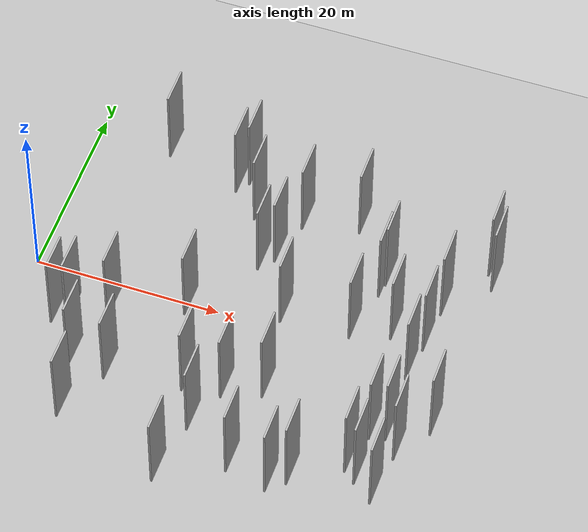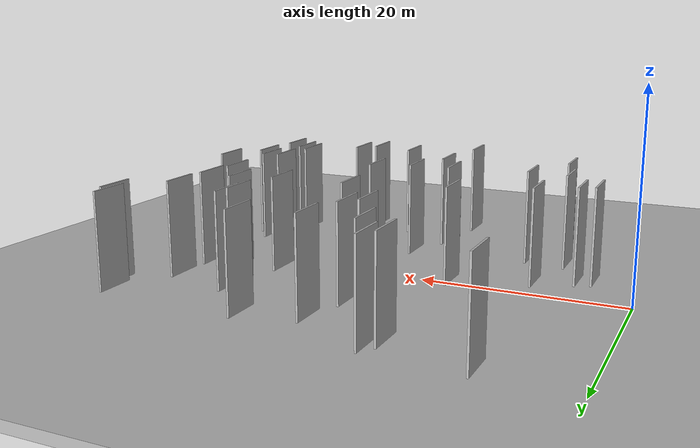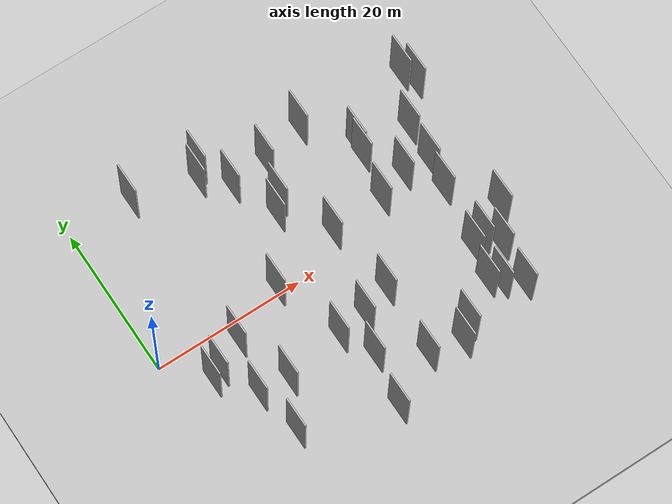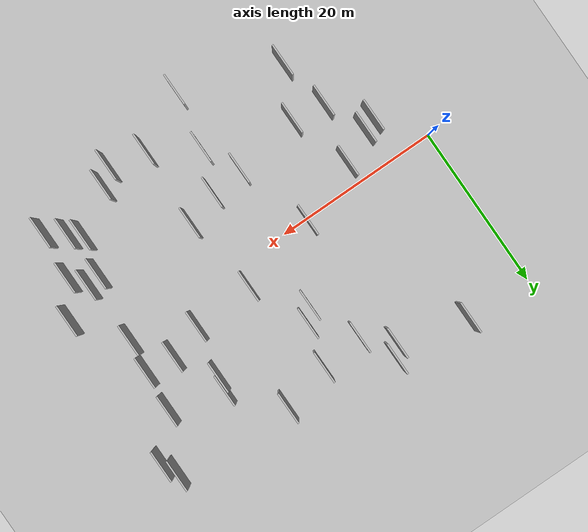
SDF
<?xml version="1.0" encoding="utf-8"?>

<sdf version="1.6">

   <world name="default">

      <gui fullscreen="0">

         <camera name="user_camera">

            <pose>-15 0 4.57585 0 0 0</pose>

            <view_controller>orbit</view_controller>

         </camera>

      </gui>

      <scene>

         <sky>

           <clouds>

             <speed>12</speed>

           </clouds>

         </sky>

         <ambient>0.4 0.4 0.4 1</ambient>

         <background>0.7 0.7 0.7 1</background>

         <shadows>1</shadows>

      </scene>

      <gravity>0 0 -9.8066</gravity>

      <magnetic_field>6e-06 2.3e-05 -4.2e-05</magnetic_field>

      <physics default="0" name="default_physics" type="ode">

         <ode>

            <solver>

               <type>quick</type>

               <iters>10</iters>

               <sor>1.0</sor>

               <use_dynamic_moi_rescaling>0</use_dynamic_moi_rescaling>

            </solver>

            <constraints>

               <cfm>0</cfm>

               <erp>0.2</erp>

               <contact_max_correcting_vel>100</contact_max_correcting_vel>

               <contact_surface_layer>0.001</contact_surface_layer>

            </constraints>

         </ode>

         <max_step_size>0.004</max_step_size>

         <real_time_factor>1</real_time_factor>

         <real_time_update_rate>250</real_time_update_rate>

      </physics>

      <light name="sun" type="directional">

         <cast_shadows>1</cast_shadows>

         <pose>0 0 10 0 0 0</pose>

         <diffuse>0.8 0.8 0.8 1</diffuse>

         <specular>0.2 0.2 0.2 1</specular>

         <attenuation>

            <range>1000</range>

            <constant>0.9</constant>

            <linear>0.01</linear>

            <quadratic>0.001</quadratic>

         </attenuation>

         <direction>-0.5 0.1 -0.9</direction>

      </light>

      <include>

         <name>ground_plane_1</name>

         <uri>model://HANNAS_ground_plane</uri>

         <pose>0 0 0  0 0 0</pose>

      </include>

      <include>

         <name>ground_plane_2</name>

         <uri>model://HANNAS_ground_plane</uri>

         <pose>100 0 0  0 0 0</pose>

      </include>

      <model name="HANNAS_wall_1">

         <static>1</static>

         <pose frame="">9.5221 -2.6151 0.0 0.000000 0.000000 1.570796</pose>

         <link name="link">

            <pose frame="">0 0 5.00 0 0 0</pose>

            <collision name="collision">

               <geometry>

                  <box>

                     <size>4.00 0.2 10.00</size>

                  </box>

               </geometry>

               <max_contacts>10</max_contacts>

               <surface>

                  <contact>

                     <ode/>

                  </contact>

                  <bounce/>

                  <friction>

                     <torsional>

                        <ode/>

                     </torsional>

                     <ode/>

                  </friction>

               </surface>

            </collision>

            <visual name="visual">

               <cast_shadows>0</cast_shadows>

               <geometry>

                  <box>

                     <size>4.00 0.2 10.00</size>

                  </box>

               </geometry>

               <material>

                  <script>

                     <uri>model://HANNAS_wall/materials/scripts</uri>

                     <uri>model://HANNAS_wall/materials/textures</uri>

                     <name>vrc/HANNAS_wall</name>

                  </script>

               </material>

            </visual>

            <self_collide>0</self_collide>

            <enable_wind>0</enable_wind>

            <kinematic>0</kinematic>

         </link>

      </model>

      <model name="HANNAS_wall_2">

         <static>1</static>

         <pose frame="">40.8400 -0.0192 0.0 0.000000 0.000000 1.570796</pose>

         <link name="link">

            <pose frame="">0 0 5.00 0 0 0</pose>

            <collision name="collision">

               <geometry>

                  <box>

                     <size>4.00 0.2 10.00</size>

                  </box>

               </geometry>

               <max_contacts>10</max_contacts>

               <surface>

                  <contact>

                     <ode/>

                  </contact>

                  <bounce/>

                  <friction>

                     <torsional>

                        <ode/>

                     </torsional>

                     <ode/>

                  </friction>

               </surface>

            </collision>

            <visual name="visual">

               <cast_shadows>0</cast_shadows>

               <geometry>

                  <box>

                     <size>4.00 0.2 10.00</size>

                  </box>

               </geometry>

               <material>

                  <script>

                     <uri>model://HANNAS_wall/materials/scripts</uri>

                     <uri>model://HANNAS_wall/materials/textures</uri>

                     <name>vrc/HANNAS_wall</name>

                  </script>

               </material>

            </visual>

            <self_collide>0</self_collide>

            <enable_wind>0</enable_wind>

            <kinematic>0</kinematic>

         </link>

      </model>

      <model name="HANNAS_wall_3">

         <static>1</static>

         <pose frame="">27.4246 -16.4977 0.0 0.000000 0.000000 1.570796</pose>

         <link name="link">

            <pose frame="">0 0 5.00 0 0 0</pose>

            <collision name="collision">

               <geometry>

                  <box>

                     <size>4.00 0.2 10.00</size>

                  </box>

               </geometry>

               <max_contacts>10</max_contacts>

               <surface>

                  <contact>

                     <ode/>

                  </contact>

                  <bounce/>

                  <friction>

                     <torsional>

                        <ode/>

                     </torsional>

                     <ode/>

                  </friction>

               </surface>

            </collision>

            <visual name="visual">

               <cast_shadows>0</cast_shadows>

               <geometry>

                  <box>

                     <size>4.00 0.2 10.00</size>

                  </box>

               </geometry>

               <material>

                  <script>

                     <uri>model://HANNAS_wall/materials/scripts</uri>

                     <uri>model://HANNAS_wall/materials/textures</uri>

                     <name>vrc/HANNAS_wall</name>

                  </script>

               </material>

            </visual>

            <self_collide>0</self_collide>

            <enable_wind>0</enable_wind>

            <kinematic>0</kinematic>

         </link>

      </model>

      <model name="HANNAS_wall_4">

         <static>1</static>

         <pose frame="">22.0901 8.1828 0.0 0.000000 0.000000 1.570796</pose>

         <link name="link">

            <pose frame="">0 0 5.00 0 0 0</pose>

            <collision name="collision">

               <geometry>

                  <box>

                     <size>4.00 0.2 10.00</size>

                  </box>

               </geometry>

               <max_contacts>10</max_contacts>

               <surface>

                  <contact>

                     <ode/>

                  </contact>

                  <bounce/>

                  <friction>

                     <torsional>

                        <ode/>

                     </torsional>

                     <ode/>

                  </friction>

               </surface>

            </collision>

            <visual name="visual">

               <cast_shadows>0</cast_shadows>

               <geometry>

                  <box>

                     <size>4.00 0.2 10.00</size>

                  </box>

               </geometry>

               <material>

                  <script>

                     <uri>model://HANNAS_wall/materials/scripts</uri>

                     <uri>model://HANNAS_wall/materials/textures</uri>

                     <name>vrc/HANNAS_wall</name>

                  </script>

               </material>

            </visual>

            <self_collide>0</self_collide>

            <enable_wind>0</enable_wind>

            <kinematic>0</kinematic>

         </link>

      </model>

      <model name="HANNAS_wall_5">

         <static>1</static>

         <pose frame="">45.2176 -5.6757 0.0 0.000000 0.000000 1.570796</pose>

         <link name="link">

            <pose frame="">0 0 5.00 0 0 0</pose>

            <collision name="collision">

               <geometry>

                  <box>

                     <size>4.00 0.2 10.00</size>

                  </box>

               </geometry>

               <max_contacts>10</max_contacts>

               <surface>

                  <contact>

                     <ode/>

                  </contact>

                  <bounce/>

                  <friction>

                     <torsional>

                        <ode/>

                     </torsional>

                     <ode/>

                  </friction>

               </surface>

            </collision>

            <visual name="visual">

               <cast_shadows>0</cast_shadows>

               <geometry>

                  <box>

                     <size>4.00 0.2 10.00</size>

                  </box>

               </geometry>

               <material>

                  <script>

                     <uri>model://HANNAS_wall/materials/scripts</uri>

                     <uri>model://HANNAS_wall/materials/textures</uri>

                     <name>vrc/HANNAS_wall</name>

                  </script>

               </material>

            </visual>

            <self_collide>0</self_collide>

            <enable_wind>0</enable_wind>

            <kinematic>0</kinematic>

         </link>

      </model>

      <model name="HANNAS_wall_6">

         <static>1</static>

         <pose frame="">7.9587 -9.5950 0.0 0.000000 0.000000 1.570796</pose>

         <link name="link">

            <pose frame="">0 0 5.00 0 0 0</pose>

            <collision name="collision">

               <geometry>

                  <box>

                     <size>4.00 0.2 10.00</size>

                  </box>

               </geometry>

               <max_contacts>10</max_contacts>

               <surface>

                  <contact>

                     <ode/>

                  </contact>

                  <bounce/>

                  <friction>

                     <torsional>

                        <ode/>

                     </torsional>

                     <ode/>

                  </friction>

               </surface>

            </collision>

            <visual name="visual">

               <cast_shadows>0</cast_shadows>

               <geometry>

                  <box>

                     <size>4.00 0.2 10.00</size>

                  </box>

               </geometry>

               <material>

                  <script>

                     <uri>model://HANNAS_wall/materials/scripts</uri>

                     <uri>model://HANNAS_wall/materials/textures</uri>

                     <name>vrc/HANNAS_wall</name>

                  </script>

               </material>

            </visual>

            <self_collide>0</self_collide>

            <enable_wind>0</enable_wind>

            <kinematic>0</kinematic>

         </link>

      </model>

      <model name="HANNAS_wall_7">

         <static>1</static>

         <pose frame="">45.7970 13.5000 0.0 0.000000 0.000000 1.570796</pose>

         <link name="link">

            <pose frame="">0 0 5.00 0 0 0</pose>

            <collision name="collision">

               <geometry>

                  <box>

                     <size>4.00 0.2 10.00</size>

                  </box>

               </geometry>

               <max_contacts>10</max_contacts>

               <surface>

                  <contact>

                     <ode/>

                  </contact>

                  <bounce/>

                  <friction>

                     <torsional>

                        <ode/>

                     </torsional>

                     <ode/>

                  </friction>

               </surface>

            </collision>

            <visual name="visual">

               <cast_shadows>0</cast_shadows>

               <geometry>

                  <box>

                     <size>4.00 0.2 10.00</size>

                  </box>

               </geometry>

               <material>

                  <script>

                     <uri>model://HANNAS_wall/materials/scripts</uri>

                     <uri>model://HANNAS_wall/materials/textures</uri>

                     <name>vrc/HANNAS_wall</name>

                  </script>

               </material>

            </visual>

            <self_collide>0</self_collide>

            <enable_wind>0</enable_wind>

            <kinematic>0</kinematic>

         </link>

      </model>

      <model name="HANNAS_wall_8">

         <static>1</static>

         <pose frame="">35.2529 10.5820 0.0 0.000000 0.000000 1.570796</pose>

         <link name="link">

            <pose frame="">0 0 5.00 0 0 0</pose>

            <collision name="collision">

               <geometry>

                  <box>

                     <size>4.00 0.2 10.00</size>

                  </box>

               </geometry>

               <max_contacts>10</max_contacts>

               <surface>

                  <contact>

                     <ode/>

                  </contact>

                  <bounce/>

                  <friction>

                     <torsional>

                        <ode/>

                     </torsional>

                     <ode/>

                  </friction>

               </surface>

            </collision>

            <visual name="visual">

               <cast_shadows>0</cast_shadows>

               <geometry>

                  <box>

                     <size>4.00 0.2 10.00</size>

                  </box>

               </geometry>

               <material>

                  <script>

                     <uri>model://HANNAS_wall/materials/scripts</uri>

                     <uri>model://HANNAS_wall/materials/textures</uri>

                     <name>vrc/HANNAS_wall</name>

                  </script>

               </material>

            </visual>

            <self_collide>0</self_collide>

            <enable_wind>0</enable_wind>

            <kinematic>0</kinematic>

         </link>

      </model>

      <model name="HANNAS_wall_9">

         <static>1</static>

         <pose frame="">44.9552 15.3432 0.0 0.000000 0.000000 1.570796</pose>

         <link name="link">

            <pose frame="">0 0 5.00 0 0 0</pose>

            <collision name="collision">

               <geometry>

                  <box>

                     <size>4.00 0.2 10.00</size>

                  </box>

               </geometry>

               <max_contacts>10</max_contacts>

               <surface>

                  <contact>

                     <ode/>

                  </contact>

                  <bounce/>

                  <friction>

                     <torsional>

                        <ode/>

                     </torsional>

                     <ode/>

                  </friction>

               </surface>

            </collision>

            <visual name="visual">

               <cast_shadows>0</cast_shadows>

               <geometry>

                  <box>

                     <size>4.00 0.2 10.00</size>

                  </box>

               </geometry>

               <material>

                  <script>

                     <uri>model://HANNAS_wall/materials/scripts</uri>

                     <uri>model://HANNAS_wall/materials/textures</uri>

                     <name>vrc/HANNAS_wall</name>

                  </script>

               </material>

            </visual>

            <self_collide>0</self_collide>

            <enable_wind>0</enable_wind>

            <kinematic>0</kinematic>

         </link>

      </model>

      <model name="HANNAS_wall_10">

         <static>1</static>

         <pose frame="">30.5593 16.1835 0.0 0.000000 0.000000 1.570796</pose>

         <link name="link">

            <pose frame="">0 0 5.00 0 0 0</pose>

            <collision name="collision">

               <geometry>

                  <box>

                     <size>4.00 0.2 10.00</size>

                  </box>

               </geometry>

               <max_contacts>10</max_contacts>

               <surface>

                  <contact>

                     <ode/>

                  </contact>

                  <bounce/>

                  <friction>

                     <torsional>

                        <ode/>

                     </torsional>

                     <ode/>

                  </friction>

               </surface>

            </collision>

            <visual name="visual">

               <cast_shadows>0</cast_shadows>

               <geometry>

                  <box>

                     <size>4.00 0.2 10.00</size>

                  </box>

               </geometry>

               <material>

                  <script>

                     <uri>model://HANNAS_wall/materials/scripts</uri>

                     <uri>model://HANNAS_wall/materials/textures</uri>

                     <name>vrc/HANNAS_wall</name>

                  </script>

               </material>

            </visual>

            <self_collide>0</self_collide>

            <enable_wind>0</enable_wind>

            <kinematic>0</kinematic>

         </link>

      </model>

      <model name="HANNAS_wall_11">

         <static>1</static>

         <pose frame="">37.8610 4.2416 0.0 0.000000 0.000000 1.570796</pose>

         <link name="link">

            <pose frame="">0 0 5.00 0 0 0</pose>

            <collision name="collision">

               <geometry>

                  <box>

                     <size>4.00 0.2 10.00</size>

                  </box>

               </geometry>

               <max_contacts>10</max_contacts>

               <surface>

                  <contact>

                     <ode/>

                  </contact>

                  <bounce/>

                  <friction>

                     <torsional>

                        <ode/>

                     </torsional>

                     <ode/>

                  </friction>

               </surface>

            </collision>

            <visual name="visual">

               <cast_shadows>0</cast_shadows>

               <geometry>

                  <box>

                     <size>4.00 0.2 10.00</size>

                  </box>

               </geometry>

               <material>

                  <script>

                     <uri>model://HANNAS_wall/materials/scripts</uri>

                     <uri>model://HANNAS_wall/materials/textures</uri>

                     <name>vrc/HANNAS_wall</name>

                  </script>

               </material>

            </visual>

            <self_collide>0</self_collide>

            <enable_wind>0</enable_wind>

            <kinematic>0</kinematic>

         </link>

      </model>

      <model name="HANNAS_wall_12">

         <static>1</static>

         <pose frame="">39.8661 -13.7240 0.0 0.000000 0.000000 1.570796</pose>

         <link name="link">

            <pose frame="">0 0 5.00 0 0 0</pose>

            <collision name="collision">

               <geometry>

                  <box>

                     <size>4.00 0.2 10.00</size>

                  </box>

               </geometry>

               <max_contacts>10</max_contacts>

               <surface>

                  <contact>

                     <ode/>

                  </contact>

                  <bounce/>

                  <friction>

                     <torsional>

                        <ode/>

                     </torsional>

                     <ode/>

                  </friction>

               </surface>

            </collision>

            <visual name="visual">

               <cast_shadows>0</cast_shadows>

               <geometry>

                  <box>

                     <size>4.00 0.2 10.00</size>

                  </box>

               </geometry>

               <material>

                  <script>

                     <uri>model://HANNAS_wall/materials/scripts</uri>

                     <uri>model://HANNAS_wall/materials/textures</uri>

                     <name>vrc/HANNAS_wall</name>

                  </script>

               </material>

            </visual>

            <self_collide>0</self_collide>

            <enable_wind>0</enable_wind>

            <kinematic>0</kinematic>

         </link>

      </model>

      <model name="HANNAS_wall_13">

         <static>1</static>

         <pose frame="">16.9068 0.2589 0.0 0.000000 0.000000 1.570796</pose>

         <link name="link">

            <pose frame="">0 0 5.00 0 0 0</pose>

            <collision name="collision">

               <geometry>

                  <box>

                     <size>4.00 0.2 10.00</size>

                  </box>

               </geometry>

               <max_contacts>10</max_contacts>

               <surface>

                  <contact>

                     <ode/>

                  </contact>

                  <bounce/>

                  <friction>

                     <torsional>

                        <ode/>

                     </torsional>

                     <ode/>

                  </friction>

               </surface>

            </collision>

            <visual name="visual">

               <cast_shadows>0</cast_shadows>

               <geometry>

                  <box>

                     <size>4.00 0.2 10.00</size>

                  </box>

               </geometry>

               <material>

                  <script>

                     <uri>model://HANNAS_wall/materials/scripts</uri>

                     <uri>model://HANNAS_wall/materials/textures</uri>

                     <name>vrc/HANNAS_wall</name>

                  </script>

               </material>

            </visual>

            <self_collide>0</self_collide>

            <enable_wind>0</enable_wind>

            <kinematic>0</kinematic>

         </link>

      </model>

      <model name="HANNAS_wall_14">

         <static>1</static>

         <pose frame="">19.9105 -8.7717 0.0 0.000000 0.000000 1.570796</pose>

         <link name="link">

            <pose frame="">0 0 5.00 0 0 0</pose>

            <collision name="collision">

               <geometry>

                  <box>

                     <size>4.00 0.2 10.00</size>

                  </box>

               </geometry>

               <max_contacts>10</max_contacts>

               <surface>

                  <contact>

                     <ode/>

                  </contact>

                  <bounce/>

                  <friction>

                     <torsional>

                        <ode/>

                     </torsional>

                     <ode/>

                  </friction>

               </surface>

            </collision>

            <visual name="visual">

               <cast_shadows>0</cast_shadows>

               <geometry>

                  <box>

                     <size>4.00 0.2 10.00</size>

                  </box>

               </geometry>

               <material>

                  <script>

                     <uri>model://HANNAS_wall/materials/scripts</uri>

                     <uri>model://HANNAS_wall/materials/textures</uri>

                     <name>vrc/HANNAS_wall</name>

                  </script>

               </material>

            </visual>

            <self_collide>0</self_collide>

            <enable_wind>0</enable_wind>

            <kinematic>0</kinematic>

         </link>

      </model>

      <model name="HANNAS_wall_15">

         <static>1</static>

         <pose frame="">41.2042 -7.7627 0.0 0.000000 0.000000 1.570796</pose>

         <link name="link">

            <pose frame="">0 0 5.00 0 0 0</pose>

            <collision name="collision">

               <geometry>

                  <box>

                     <size>4.00 0.2 10.00</size>

                  </box>

               </geometry>

               <max_contacts>10</max_contacts>

               <surface>

                  <contact>

                     <ode/>

                  </contact>

                  <bounce/>

                  <friction>

                     <torsional>

                        <ode/>

                     </torsional>

                     <ode/>

                  </friction>

               </surface>

            </collision>

            <visual name="visual">

               <cast_shadows>0</cast_shadows>

               <geometry>

                  <box>

                     <size>4.00 0.2 10.00</size>

                  </box>

               </geometry>

               <material>

                  <script>

                     <uri>model://HANNAS_wall/materials/scripts</uri>

                     <uri>model://HANNAS_wall/materials/textures</uri>

                     <name>vrc/HANNAS_wall</name>

                  </script>

               </material>

            </visual>

            <self_collide>0</self_collide>

            <enable_wind>0</enable_wind>

            <kinematic>0</kinematic>

         </link>

      </model>

      <model name="HANNAS_wall_16">

         <static>1</static>

         <pose frame="">38.5637 -12.6754 0.0 0.000000 0.000000 1.570796</pose>

         <link name="link">

            <pose frame="">0 0 5.00 0 0 0</pose>

            <collision name="collision">

               <geometry>

                  <box>

                     <size>4.00 0.2 10.00</size>

                  </box>

               </geometry>

               <max_contacts>10</max_contacts>

               <surface>

                  <contact>

                     <ode/>

                  </contact>

                  <bounce/>

                  <friction>

                     <torsional>

                        <ode/>

                     </torsional>

                     <ode/>

                  </friction>

               </surface>

            </collision>

            <visual name="visual">

               <cast_shadows>0</cast_shadows>

               <geometry>

                  <box>

                     <size>4.00 0.2 10.00</size>

                  </box>

               </geometry>

               <material>

                  <script>

                     <uri>model://HANNAS_wall/materials/scripts</uri>

                     <uri>model://HANNAS_wall/materials/textures</uri>

                     <name>vrc/HANNAS_wall</name>

                  </script>

               </material>

            </visual>

            <self_collide>0</self_collide>

            <enable_wind>0</enable_wind>

            <kinematic>0</kinematic>

         </link>

      </model>

      <model name="HANNAS_wall_17">

         <static>1</static>

         <pose frame="">39.5953 -8.1572 0.0 0.000000 0.000000 1.570796</pose>

         <link name="link">

            <pose frame="">0 0 5.00 0 0 0</pose>

            <collision name="collision">

               <geometry>

                  <box>

                     <size>4.00 0.2 10.00</size>

                  </box>

               </geometry>

               <max_contacts>10</max_contacts>

               <surface>

                  <contact>

                     <ode/>

                  </contact>

                  <bounce/>

                  <friction>

                     <torsional>

                        <ode/>

                     </torsional>

                     <ode/>

                  </friction>

               </surface>

            </collision>

            <visual name="visual">

               <cast_shadows>0</cast_shadows>

               <geometry>

                  <box>

                     <size>4.00 0.2 10.00</size>

                  </box>

               </geometry>

               <material>

                  <script>

                     <uri>model://HANNAS_wall/materials/scripts</uri>

                     <uri>model://HANNAS_wall/materials/textures</uri>

                     <name>vrc/HANNAS_wall</name>

                  </script>

               </material>

            </visual>

            <self_collide>0</self_collide>

            <enable_wind>0</enable_wind>

            <kinematic>0</kinematic>

         </link>

      </model>

      <model name="HANNAS_wall_18">

         <static>1</static>

         <pose frame="">4.3401 -5.1605 0.0 0.000000 0.000000 1.570796</pose>

         <link name="link">

            <pose frame="">0 0 5.00 0 0 0</pose>

            <collision name="collision">

               <geometry>

                  <box>

                     <size>4.00 0.2 10.00</size>

                  </box>

               </geometry>

               <max_contacts>10</max_contacts>

               <surface>

                  <contact>

                     <ode/>

                  </contact>

                  <bounce/>

                  <friction>

                     <torsional>

                        <ode/>

                     </torsional>

                     <ode/>

                  </friction>

               </surface>

            </collision>

            <visual name="visual">

               <cast_shadows>0</cast_shadows>

               <geometry>

                  <box>

                     <size>4.00 0.2 10.00</size>

                  </box>

               </geometry>

               <material>

                  <script>

                     <uri>model://HANNAS_wall/materials/scripts</uri>

                     <uri>model://HANNAS_wall/materials/textures</uri>

                     <name>vrc/HANNAS_wall</name>

                  </script>

               </material>

            </visual>

            <self_collide>0</self_collide>

            <enable_wind>0</enable_wind>

            <kinematic>0</kinematic>

         </link>

      </model>

      <model name="HANNAS_wall_19">

         <static>1</static>

         <pose frame="">19.5626 14.2608 0.0 0.000000 0.000000 1.570796</pose>

         <link name="link">

            <pose frame="">0 0 5.00 0 0 0</pose>

            <collision name="collision">

               <geometry>

                  <box>

                     <size>4.00 0.2 10.00</size>

                  </box>

               </geometry>

               <max_contacts>10</max_contacts>

               <surface>

                  <contact>

                     <ode/>

                  </contact>

                  <bounce/>

                  <friction>

                     <torsional>

                        <ode/>

                     </torsional>

                     <ode/>

                  </friction>

               </surface>

            </collision>

            <visual name="visual">

               <cast_shadows>0</cast_shadows>

               <geometry>

                  <box>

                     <size>4.00 0.2 10.00</size>

                  </box>

               </geometry>

               <material>

                  <script>

                     <uri>model://HANNAS_wall/materials/scripts</uri>

                     <uri>model://HANNAS_wall/materials/textures</uri>

                     <name>vrc/HANNAS_wall</name>

                  </script>

               </material>

            </visual>

            <self_collide>0</self_collide>

            <enable_wind>0</enable_wind>

            <kinematic>0</kinematic>

         </link>

      </model>

      <model name="HANNAS_wall_20">

         <static>1</static>

         <pose frame="">42.6692 -9.7298 0.0 0.000000 0.000000 1.570796</pose>

         <link name="link">

            <pose frame="">0 0 5.00 0 0 0</pose>

            <collision name="collision">

               <geometry>

                  <box>

                     <size>4.00 0.2 10.00</size>

                  </box>

               </geometry>

               <max_contacts>10</max_contacts>

               <surface>

                  <contact>

                     <ode/>

                  </contact>

                  <bounce/>

                  <friction>

                     <torsional>

                        <ode/>

                     </torsional>

                     <ode/>

                  </friction>

               </surface>

            </collision>

            <visual name="visual">

               <cast_shadows>0</cast_shadows>

               <geometry>

                  <box>

                     <size>4.00 0.2 10.00</size>

                  </box>

               </geometry>

               <material>

                  <script>

                     <uri>model://HANNAS_wall/materials/scripts</uri>

                     <uri>model://HANNAS_wall/materials/textures</uri>

                     <name>vrc/HANNAS_wall</name>

                  </script>

               </material>

            </visual>

            <self_collide>0</self_collide>

            <enable_wind>0</enable_wind>

            <kinematic>0</kinematic>

         </link>

      </model>

      <model name="HANNAS_wall_21">

         <static>1</static>

         <pose frame="">27.8666 -6.9090 0.0 0.000000 0.000000 1.570796</pose>

         <link name="link">

            <pose frame="">0 0 5.00 0 0 0</pose>

            <collision name="collision">

               <geometry>

                  <box>

                     <size>4.00 0.2 10.00</size>

                  </box>

               </geometry>

               <max_contacts>10</max_contacts>

               <surface>

                  <contact>

                     <ode/>

                  </contact>

                  <bounce/>

                  <friction>

                     <torsional>

                        <ode/>

                     </torsional>

                     <ode/>

                  </friction>

               </surface>

            </collision>

            <visual name="visual">

               <cast_shadows>0</cast_shadows>

               <geometry>

                  <box>

                     <size>4.00 0.2 10.00</size>

                  </box>

               </geometry>

               <material>

                  <script>

                     <uri>model://HANNAS_wall/materials/scripts</uri>

                     <uri>model://HANNAS_wall/materials/textures</uri>

                     <name>vrc/HANNAS_wall</name>

                  </script>

               </material>

            </visual>

            <self_collide>0</self_collide>

            <enable_wind>0</enable_wind>

            <kinematic>0</kinematic>

         </link>

      </model>

      <model name="HANNAS_wall_22">

         <static>1</static>

         <pose frame="">23.4074 9.7237 0.0 0.000000 0.000000 1.570796</pose>

         <link name="link">

            <pose frame="">0 0 5.00 0 0 0</pose>

            <collision name="collision">

               <geometry>

                  <box>

                     <size>4.00 0.2 10.00</size>

                  </box>

               </geometry>

               <max_contacts>10</max_contacts>

               <surface>

                  <contact>

                     <ode/>

                  </contact>

                  <bounce/>

                  <friction>

                     <torsional>

                        <ode/>

                     </torsional>

                     <ode/>

                  </friction>

               </surface>

            </collision>

            <visual name="visual">

               <cast_shadows>0</cast_shadows>

               <geometry>

                  <box>

                     <size>4.00 0.2 10.00</size>

                  </box>

               </geometry>

               <material>

                  <script>

                     <uri>model://HANNAS_wall/materials/scripts</uri>

                     <uri>model://HANNAS_wall/materials/textures</uri>

                     <name>vrc/HANNAS_wall</name>

                  </script>

               </material>

            </visual>

            <self_collide>0</self_collide>

            <enable_wind>0</enable_wind>

            <kinematic>0</kinematic>

         </link>

      </model>

      <model name="HANNAS_wall_23">

         <static>1</static>

         <pose frame="">31.8453 -17.4444 0.0 0.000000 0.000000 1.570796</pose>

         <link name="link">

            <pose frame="">0 0 5.00 0 0 0</pose>

            <collision name="collision">

               <geometry>

                  <box>

                     <size>4.00 0.2 10.00</size>

                  </box>

               </geometry>

               <max_contacts>10</max_contacts>

               <surface>

                  <contact>

                     <ode/>

                  </contact>

                  <bounce/>

                  <friction>

                     <torsional>

                        <ode/>

                     </torsional>

                     <ode/>

                  </friction>

               </surface>

            </collision>

            <visual name="visual">

               <cast_shadows>0</cast_shadows>

               <geometry>

                  <box>

                     <size>4.00 0.2 10.00</size>

                  </box>

               </geometry>

               <material>

                  <script>

                     <uri>model://HANNAS_wall/materials/scripts</uri>

                     <uri>model://HANNAS_wall/materials/textures</uri>

                     <name>vrc/HANNAS_wall</name>

                  </script>

               </material>

            </visual>

            <self_collide>0</self_collide>

            <enable_wind>0</enable_wind>

            <kinematic>0</kinematic>

         </link>

      </model>

      <model name="HANNAS_wall_24">

         <static>1</static>

         <pose frame="">41.7783 8.8370 0.0 0.000000 0.000000 1.570796</pose>

         <link name="link">

            <pose frame="">0 0 5.00 0 0 0</pose>

            <collision name="collision">

               <geometry>

                  <box>

                     <size>4.00 0.2 10.00</size>

                  </box>

               </geometry>

               <max_contacts>10</max_contacts>

               <surface>

                  <contact>

                     <ode/>

                  </contact>

                  <bounce/>

                  <friction>

                     <torsional>

                        <ode/>

                     </torsional>

                     <ode/>

                  </friction>

               </surface>

            </collision>

            <visual name="visual">

               <cast_shadows>0</cast_shadows>

               <geometry>

                  <box>

                     <size>4.00 0.2 10.00</size>

                  </box>

               </geometry>

               <material>

                  <script>

                     <uri>model://HANNAS_wall/materials/scripts</uri>

                     <uri>model://HANNAS_wall/materials/textures</uri>

                     <name>vrc/HANNAS_wall</name>

                  </script>

               </material>

            </visual>

            <self_collide>0</self_collide>

            <enable_wind>0</enable_wind>

            <kinematic>0</kinematic>

         </link>

      </model>

      <model name="HANNAS_wall_25">

         <static>1</static>

         <pose frame="">22.0617 -13.1059 0.0 0.000000 0.000000 1.570796</pose>

         <link name="link">

            <pose frame="">0 0 5.00 0 0 0</pose>

            <collision name="collision">

               <geometry>

                  <box>

                     <size>4.00 0.2 10.00</size>

                  </box>

               </geometry>

               <max_contacts>10</max_contacts>

               <surface>

                  <contact>

                     <ode/>

                  </contact>

                  <bounce/>

                  <friction>

                     <torsional>

                        <ode/>

                     </torsional>

                     <ode/>

                  </friction>

               </surface>

            </collision>

            <visual name="visual">

               <cast_shadows>0</cast_shadows>

               <geometry>

                  <box>

                     <size>4.00 0.2 10.00</size>

                  </box>

               </geometry>

               <material>

                  <script>

                     <uri>model://HANNAS_wall/materials/scripts</uri>

                     <uri>model://HANNAS_wall/materials/textures</uri>

                     <name>vrc/HANNAS_wall</name>

                  </script>

               </material>

            </visual>

            <self_collide>0</self_collide>

            <enable_wind>0</enable_wind>

            <kinematic>0</kinematic>

         </link>

      </model>

      <model name="HANNAS_wall_26">

         <static>1</static>

         <pose frame="">20.8854 -19.9714 0.0 0.000000 0.000000 1.570796</pose>

         <link name="link">

            <pose frame="">0 0 5.00 0 0 0</pose>

            <collision name="collision">

               <geometry>

                  <box>

                     <size>4.00 0.2 10.00</size>

                  </box>

               </geometry>

               <max_contacts>10</max_contacts>

               <surface>

                  <contact>

                     <ode/>

                  </contact>

                  <bounce/>

                  <friction>

                     <torsional>

                        <ode/>

                     </torsional>

                     <ode/>

                  </friction>

               </surface>

            </collision>

            <visual name="visual">

               <cast_shadows>0</cast_shadows>

               <geometry>

                  <box>

                     <size>4.00 0.2 10.00</size>

                  </box>

               </geometry>

               <material>

                  <script>

                     <uri>model://HANNAS_wall/materials/scripts</uri>

                     <uri>model://HANNAS_wall/materials/textures</uri>

                     <name>vrc/HANNAS_wall</name>

                  </script>

               </material>

            </visual>

            <self_collide>0</self_collide>

            <enable_wind>0</enable_wind>

            <kinematic>0</kinematic>

         </link>

      </model>

      <model name="HANNAS_wall_27">

         <static>1</static>

         <pose frame="">26.5013 2.5721 0.0 0.000000 0.000000 1.570796</pose>

         <link name="link">

            <pose frame="">0 0 5.00 0 0 0</pose>

            <collision name="collision">

               <geometry>

                  <box>

                     <size>4.00 0.2 10.00</size>

                  </box>

               </geometry>

               <max_contacts>10</max_contacts>

               <surface>

                  <contact>

                     <ode/>

                  </contact>

                  <bounce/>

                  <friction>

                     <torsional>

                        <ode/>

                     </torsional>

                     <ode/>

                  </friction>

               </surface>

            </collision>

            <visual name="visual">

               <cast_shadows>0</cast_shadows>

               <geometry>

                  <box>

                     <size>4.00 0.2 10.00</size>

                  </box>

               </geometry>

               <material>

                  <script>

                     <uri>model://HANNAS_wall/materials/scripts</uri>

                     <uri>model://HANNAS_wall/materials/textures</uri>

                     <name>vrc/HANNAS_wall</name>

                  </script>

               </material>

            </visual>

            <self_collide>0</self_collide>

            <enable_wind>0</enable_wind>

            <kinematic>0</kinematic>

         </link>

      </model>

      <model name="HANNAS_wall_28">

         <static>1</static>

         <pose frame="">5.7979 -4.5322 0.0 0.000000 0.000000 1.570796</pose>

         <link name="link">

            <pose frame="">0 0 5.00 0 0 0</pose>

            <collision name="collision">

               <geometry>

                  <box>

                     <size>4.00 0.2 10.00</size>

                  </box>

               </geometry>

               <max_contacts>10</max_contacts>

               <surface>

                  <contact>

                     <ode/>

                  </contact>

                  <bounce/>

                  <friction>

                     <torsional>

                        <ode/>

                     </torsional>

                     <ode/>

                  </friction>

               </surface>

            </collision>

            <visual name="visual">

               <cast_shadows>0</cast_shadows>

               <geometry>

                  <box>

                     <size>4.00 0.2 10.00</size>

                  </box>

               </geometry>

               <material>

                  <script>

                     <uri>model://HANNAS_wall/materials/scripts</uri>

                     <uri>model://HANNAS_wall/materials/textures</uri>

                     <name>vrc/HANNAS_wall</name>

                  </script>

               </material>

            </visual>

            <self_collide>0</self_collide>

            <enable_wind>0</enable_wind>

            <kinematic>0</kinematic>

         </link>

      </model>

      <model name="HANNAS_wall_29">

         <static>1</static>

         <pose frame="">24.7135 14.7429 0.0 0.000000 0.000000 1.570796</pose>

         <link name="link">

            <pose frame="">0 0 5.00 0 0 0</pose>

            <collision name="collision">

               <geometry>

                  <box>

                     <size>4.00 0.2 10.00</size>

                  </box>

               </geometry>

               <max_contacts>10</max_contacts>

               <surface>

                  <contact>

                     <ode/>

                  </contact>

                  <bounce/>

                  <friction>

                     <torsional>

                        <ode/>

                     </torsional>

                     <ode/>

                  </friction>

               </surface>

            </collision>

            <visual name="visual">

               <cast_shadows>0</cast_shadows>

               <geometry>

                  <box>

                     <size>4.00 0.2 10.00</size>

                  </box>

               </geometry>

               <material>

                  <script>

                     <uri>model://HANNAS_wall/materials/scripts</uri>

                     <uri>model://HANNAS_wall/materials/textures</uri>

                     <name>vrc/HANNAS_wall</name>

                  </script>

               </material>

            </visual>

            <self_collide>0</self_collide>

            <enable_wind>0</enable_wind>

            <kinematic>0</kinematic>

         </link>

      </model>

      <model name="HANNAS_wall_30">

         <static>1</static>

         <pose frame="">17.5138 18.5652 0.0 0.000000 0.000000 1.570796</pose>

         <link name="link">

            <pose frame="">0 0 5.00 0 0 0</pose>

            <collision name="collision">

               <geometry>

                  <box>

                     <size>4.00 0.2 10.00</size>

                  </box>

               </geometry>

               <max_contacts>10</max_contacts>

               <surface>

                  <contact>

                     <ode/>

                  </contact>

                  <bounce/>

                  <friction>

                     <torsional>

                        <ode/>

                     </torsional>

                     <ode/>

                  </friction>

               </surface>

            </collision>

            <visual name="visual">

               <cast_shadows>0</cast_shadows>

               <geometry>

                  <box>

                     <size>4.00 0.2 10.00</size>

                  </box>

               </geometry>

               <material>

                  <script>

                     <uri>model://HANNAS_wall/materials/scripts</uri>

                     <uri>model://HANNAS_wall/materials/textures</uri>

                     <name>vrc/HANNAS_wall</name>

                  </script>

               </material>

            </visual>

            <self_collide>0</self_collide>

            <enable_wind>0</enable_wind>

            <kinematic>0</kinematic>

         </link>

      </model>

      <model name="HANNAS_wall_31">

         <static>1</static>

         <pose frame="">9.1711 -15.8586 0.0 0.000000 0.000000 1.570796</pose>

         <link name="link">

            <pose frame="">0 0 5.00 0 0 0</pose>

            <collision name="collision">

               <geometry>

                  <box>

                     <size>4.00 0.2 10.00</size>

                  </box>

               </geometry>

               <max_contacts>10</max_contacts>

               <surface>

                  <contact>

                     <ode/>

                  </contact>

                  <bounce/>

                  <friction>

                     <torsional>

                        <ode/>

                     </torsional>

                     <ode/>

                  </friction>

               </surface>

            </collision>

            <visual name="visual">

               <cast_shadows>0</cast_shadows>

               <geometry>

                  <box>

                     <size>4.00 0.2 10.00</size>

                  </box>

               </geometry>

               <material>

                  <script>

                     <uri>model://HANNAS_wall/materials/scripts</uri>

                     <uri>model://HANNAS_wall/materials/textures</uri>

                     <name>vrc/HANNAS_wall</name>

                  </script>

               </material>

            </visual>

            <self_collide>0</self_collide>

            <enable_wind>0</enable_wind>

            <kinematic>0</kinematic>

         </link>

      </model>

      <model name="HANNAS_wall_32">

         <static>1</static>

         <pose frame="">42.0718 -15.3926 0.0 0.000000 0.000000 1.570796</pose>

         <link name="link">

            <pose frame="">0 0 5.00 0 0 0</pose>

            <collision name="collision">

               <geometry>

                  <box>

                     <size>4.00 0.2 10.00</size>

                  </box>

               </geometry>

               <max_contacts>10</max_contacts>

               <surface>

                  <contact>

                     <ode/>

                  </contact>

                  <bounce/>

                  <friction>

                     <torsional>

                        <ode/>

                     </torsional>

                     <ode/>

                  </friction>

               </surface>

            </collision>

            <visual name="visual">

               <cast_shadows>0</cast_shadows>

               <geometry>

                  <box>

                     <size>4.00 0.2 10.00</size>

                  </box>

               </geometry>

               <material>

                  <script>

                     <uri>model://HANNAS_wall/materials/scripts</uri>

                     <uri>model://HANNAS_wall/materials/textures</uri>

                     <name>vrc/HANNAS_wall</name>

                  </script>

               </material>

            </visual>

            <self_collide>0</self_collide>

            <enable_wind>0</enable_wind>

            <kinematic>0</kinematic>

         </link>

      </model>

      <model name="HANNAS_wall_33">

         <static>1</static>

         <pose frame="">35.0079 8.9866 0.0 0.000000 0.000000 1.570796</pose>

         <link name="link">

            <pose frame="">0 0 5.00 0 0 0</pose>

            <collision name="collision">

               <geometry>

                  <box>

                     <size>4.00 0.2 10.00</size>

                  </box>

               </geometry>

               <max_contacts>10</max_contacts>

               <surface>

                  <contact>

                     <ode/>

                  </contact>

                  <bounce/>

                  <friction>

                     <torsional>

                        <ode/>

                     </torsional>

                     <ode/>

                  </friction>

               </surface>

            </collision>

            <visual name="visual">

               <cast_shadows>0</cast_shadows>

               <geometry>

                  <box>

                     <size>4.00 0.2 10.00</size>

                  </box>

               </geometry>

               <material>

                  <script>

                     <uri>model://HANNAS_wall/materials/scripts</uri>

                     <uri>model://HANNAS_wall/materials/textures</uri>

                     <name>vrc/HANNAS_wall</name>

                  </script>

               </material>

            </visual>

            <self_collide>0</self_collide>

            <enable_wind>0</enable_wind>

            <kinematic>0</kinematic>

         </link>

      </model>

      <model name="HANNAS_wall_34">

         <static>1</static>

         <pose frame="">8.2555 19.3962 0.0 0.000000 0.000000 1.570796</pose>

         <link name="link">

            <pose frame="">0 0 5.00 0 0 0</pose>

            <collision name="collision">

               <geometry>

                  <box>

                     <size>4.00 0.2 10.00</size>

                  </box>

               </geometry>

               <max_contacts>10</max_contacts>

               <surface>

                  <contact>

                     <ode/>

                  </contact>

                  <bounce/>

                  <friction>

                     <torsional>

                        <ode/>

                     </torsional>

                     <ode/>

                  </friction>

               </surface>

            </collision>

            <visual name="visual">

               <cast_shadows>0</cast_shadows>

               <geometry>

                  <box>

                     <size>4.00 0.2 10.00</size>

                  </box>

               </geometry>

               <material>

                  <script>

                     <uri>model://HANNAS_wall/materials/scripts</uri>

                     <uri>model://HANNAS_wall/materials/textures</uri>

                     <name>vrc/HANNAS_wall</name>

                  </script>

               </material>

            </visual>

            <self_collide>0</self_collide>

            <enable_wind>0</enable_wind>

            <kinematic>0</kinematic>

         </link>

      </model>

      <model name="HANNAS_wall_35">

         <static>1</static>

         <pose frame="">11.9502 -10.0103 0.0 0.000000 0.000000 1.570796</pose>

         <link name="link">

            <pose frame="">0 0 5.00 0 0 0</pose>

            <collision name="collision">

               <geometry>

                  <box>

                     <size>4.00 0.2 10.00</size>

                  </box>

               </geometry>

               <max_contacts>10</max_contacts>

               <surface>

                  <contact>

                     <ode/>

                  </contact>

                  <bounce/>

                  <friction>

                     <torsional>

                        <ode/>

                     </torsional>

                     <ode/>

                  </friction>

               </surface>

            </collision>

            <visual name="visual">

               <cast_shadows>0</cast_shadows>

               <geometry>

                  <box>

                     <size>4.00 0.2 10.00</size>

                  </box>

               </geometry>

               <material>

                  <script>

                     <uri>model://HANNAS_wall/materials/scripts</uri>

                     <uri>model://HANNAS_wall/materials/textures</uri>

                     <name>vrc/HANNAS_wall</name>

                  </script>

               </material>

            </visual>

            <self_collide>0</self_collide>

            <enable_wind>0</enable_wind>

            <kinematic>0</kinematic>

         </link>

      </model>

      <model name="HANNAS_wall_36">

         <static>1</static>

         <pose frame="">23.9083 -8.2902 0.0 0.000000 0.000000 1.570796</pose>

         <link name="link">

            <pose frame="">0 0 5.00 0 0 0</pose>

            <collision name="collision">

               <geometry>

                  <box>

                     <size>4.00 0.2 10.00</size>

                  </box>

               </geometry>

               <max_contacts>10</max_contacts>

               <surface>

                  <contact>

                     <ode/>

                  </contact>

                  <bounce/>

                  <friction>

                     <torsional>

                        <ode/>

                     </torsional>

                     <ode/>

                  </friction>

               </surface>

            </collision>

            <visual name="visual">

               <cast_shadows>0</cast_shadows>

               <geometry>

                  <box>

                     <size>4.00 0.2 10.00</size>

                  </box>

               </geometry>

               <material>

                  <script>

                     <uri>model://HANNAS_wall/materials/scripts</uri>

                     <uri>model://HANNAS_wall/materials/textures</uri>

                     <name>vrc/HANNAS_wall</name>

                  </script>

               </material>

            </visual>

            <self_collide>0</self_collide>

            <enable_wind>0</enable_wind>

            <kinematic>0</kinematic>

         </link>

      </model>

      <model name="HANNAS_wall_37">

         <static>1</static>

         <pose frame="">33.8094 2.9677 0.0 0.000000 0.000000 1.570796</pose>

         <link name="link">

            <pose frame="">0 0 5.00 0 0 0</pose>

            <collision name="collision">

               <geometry>

                  <box>

                     <size>4.00 0.2 10.00</size>

                  </box>

               </geometry>

               <max_contacts>10</max_contacts>

               <surface>

                  <contact>

                     <ode/>

                  </contact>

                  <bounce/>

                  <friction>

                     <torsional>

                        <ode/>

                     </torsional>

                     <ode/>

                  </friction>

               </surface>

            </collision>

            <visual name="visual">

               <cast_shadows>0</cast_shadows>

               <geometry>

                  <box>

                     <size>4.00 0.2 10.00</size>

                  </box>

               </geometry>

               <material>

                  <script>

                     <uri>model://HANNAS_wall/materials/scripts</uri>

                     <uri>model://HANNAS_wall/materials/textures</uri>

                     <name>vrc/HANNAS_wall</name>

                  </script>

               </material>

            </visual>

            <self_collide>0</self_collide>

            <enable_wind>0</enable_wind>

            <kinematic>0</kinematic>

         </link>

      </model>

      <model name="HANNAS_wall_38">

         <static>1</static>

         <pose frame="">33.5741 -15.9675 0.0 0.000000 0.000000 1.570796</pose>

         <link name="link">

            <pose frame="">0 0 5.00 0 0 0</pose>

            <collision name="collision">

               <geometry>

                  <box>

                     <size>4.00 0.2 10.00</size>

                  </box>

               </geometry>

               <max_contacts>10</max_contacts>

               <surface>

                  <contact>

                     <ode/>

                  </contact>

                  <bounce/>

                  <friction>

                     <torsional>

                        <ode/>

                     </torsional>

                     <ode/>

                  </friction>

               </surface>

            </collision>

            <visual name="visual">

               <cast_shadows>0</cast_shadows>

               <geometry>

                  <box>

                     <size>4.00 0.2 10.00</size>

                  </box>

               </geometry>

               <material>

                  <script>

                     <uri>model://HANNAS_wall/materials/scripts</uri>

                     <uri>model://HANNAS_wall/materials/textures</uri>

                     <name>vrc/HANNAS_wall</name>

                  </script>

               </material>

            </visual>

            <self_collide>0</self_collide>

            <enable_wind>0</enable_wind>

            <kinematic>0</kinematic>

         </link>

      </model>

      <model name="HANNAS_wall_39">

         <static>1</static>

         <pose frame="">16.4967 17.1315 0.0 0.000000 0.000000 1.570796</pose>

         <link name="link">

            <pose frame="">0 0 5.00 0 0 0</pose>

            <collision name="collision">

               <geometry>

                  <box>

                     <size>4.00 0.2 10.00</size>

                  </box>

               </geometry>

               <max_contacts>10</max_contacts>

               <surface>

                  <contact>

                     <ode/>

                  </contact>

                  <bounce/>

                  <friction>

                     <torsional>

                        <ode/>

                     </torsional>

                     <ode/>

                  </friction>

               </surface>

            </collision>

            <visual name="visual">

               <cast_shadows>0</cast_shadows>

               <geometry>

                  <box>

                     <size>4.00 0.2 10.00</size>

                  </box>

               </geometry>

               <material>

                  <script>

                     <uri>model://HANNAS_wall/materials/scripts</uri>

                     <uri>model://HANNAS_wall/materials/textures</uri>

                     <name>vrc/HANNAS_wall</name>

                  </script>

               </material>

            </visual>

            <self_collide>0</self_collide>

            <enable_wind>0</enable_wind>

            <kinematic>0</kinematic>

         </link>

      </model>

      <model name="HANNAS_wall_40">

         <static>1</static>

         <pose frame="">41.3960 3.9482 0.0 0.000000 0.000000 1.570796</pose>

         <link name="link">

            <pose frame="">0 0 5.00 0 0 0</pose>

            <collision name="collision">

               <geometry>

                  <box>

                     <size>4.00 0.2 10.00</size>

                  </box>

               </geometry>

               <max_contacts>10</max_contacts>

               <surface>

                  <contact>

                     <ode/>

                  </contact>

                  <bounce/>

                  <friction>

                     <torsional>

                        <ode/>

                     </torsional>

                     <ode/>

                  </friction>

               </surface>

            </collision>

            <visual name="visual">

               <cast_shadows>0</cast_shadows>

               <geometry>

                  <box>

                     <size>4.00 0.2 10.00</size>

                  </box>

               </geometry>

               <material>

                  <script>

                     <uri>model://HANNAS_wall/materials/scripts</uri>

                     <uri>model://HANNAS_wall/materials/textures</uri>

                     <name>vrc/HANNAS_wall</name>

                  </script>

               </material>

            </visual>

            <self_collide>0</self_collide>

            <enable_wind>0</enable_wind>

            <kinematic>0</kinematic>

         </link>

      </model>

   </world>

</sdf>
